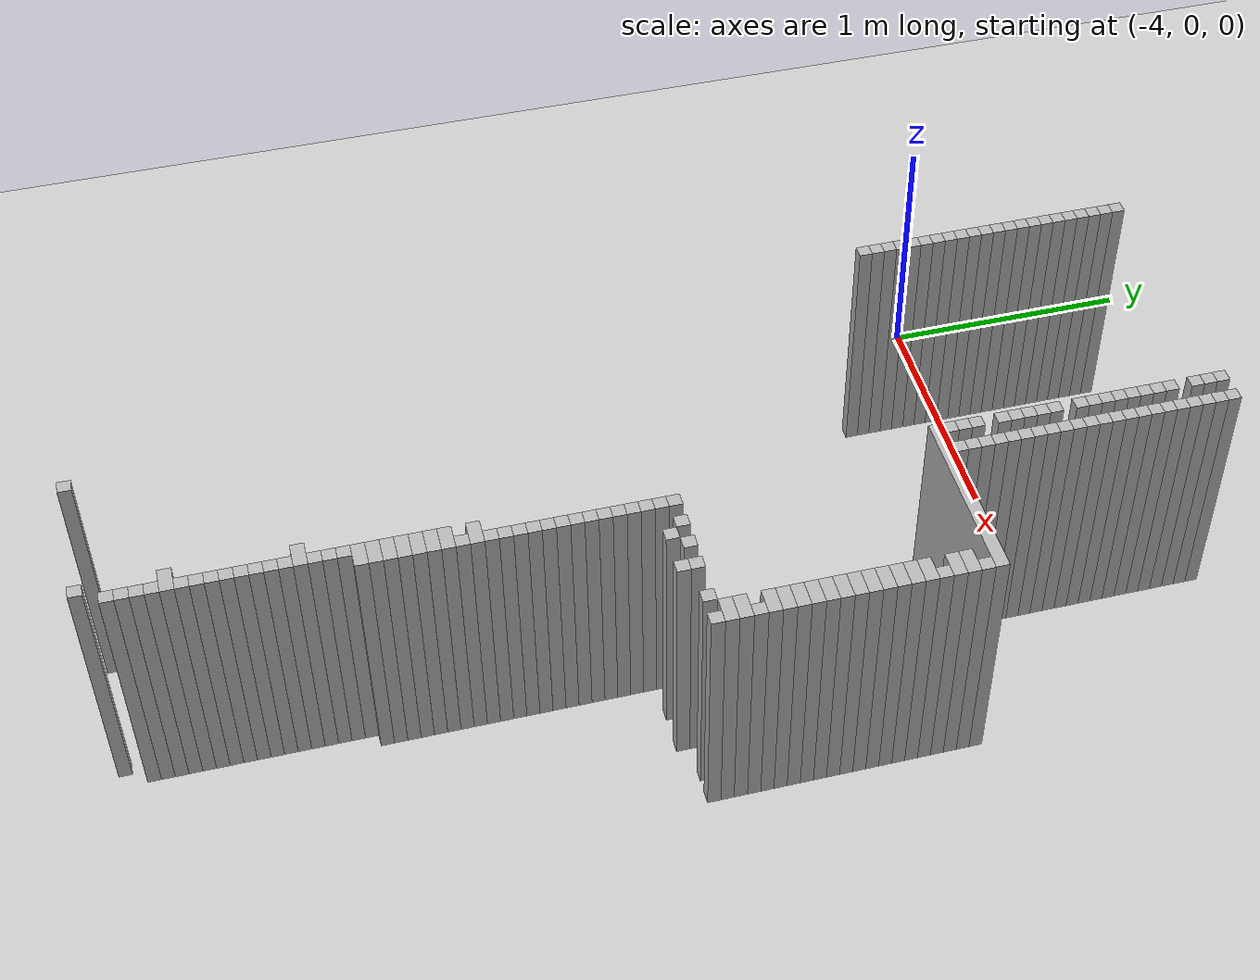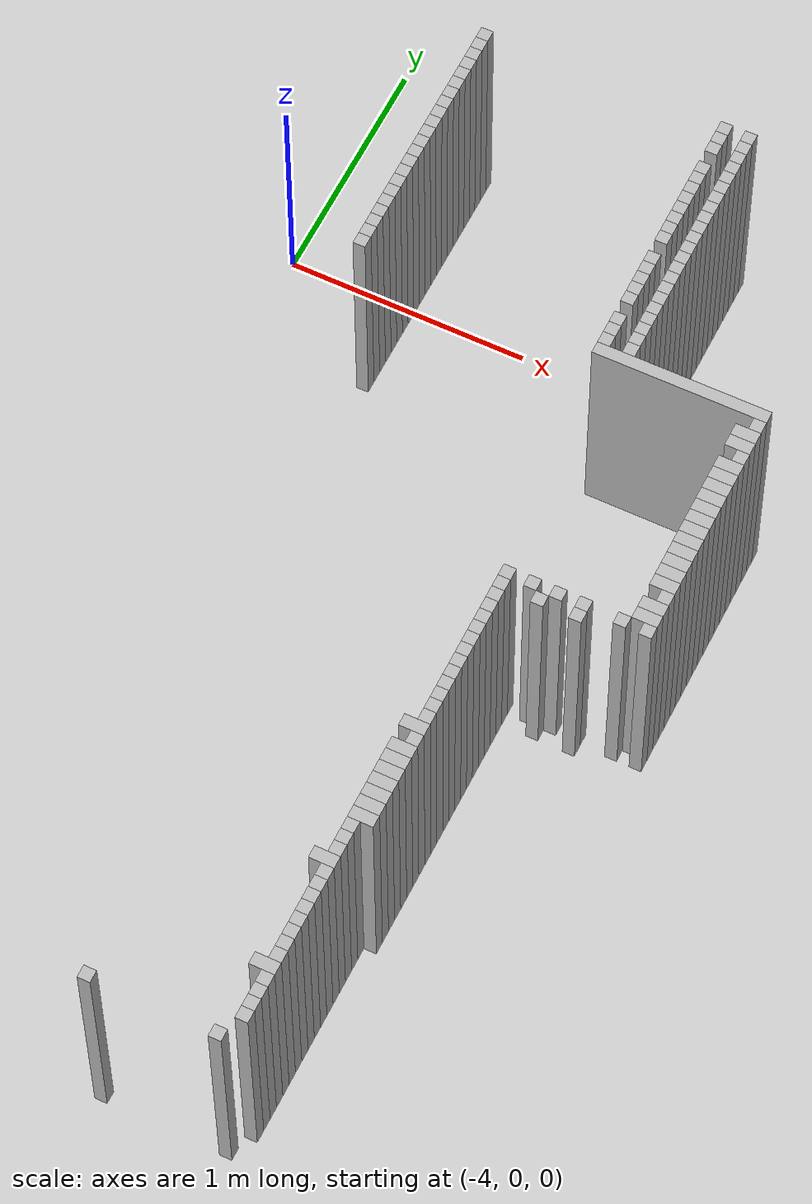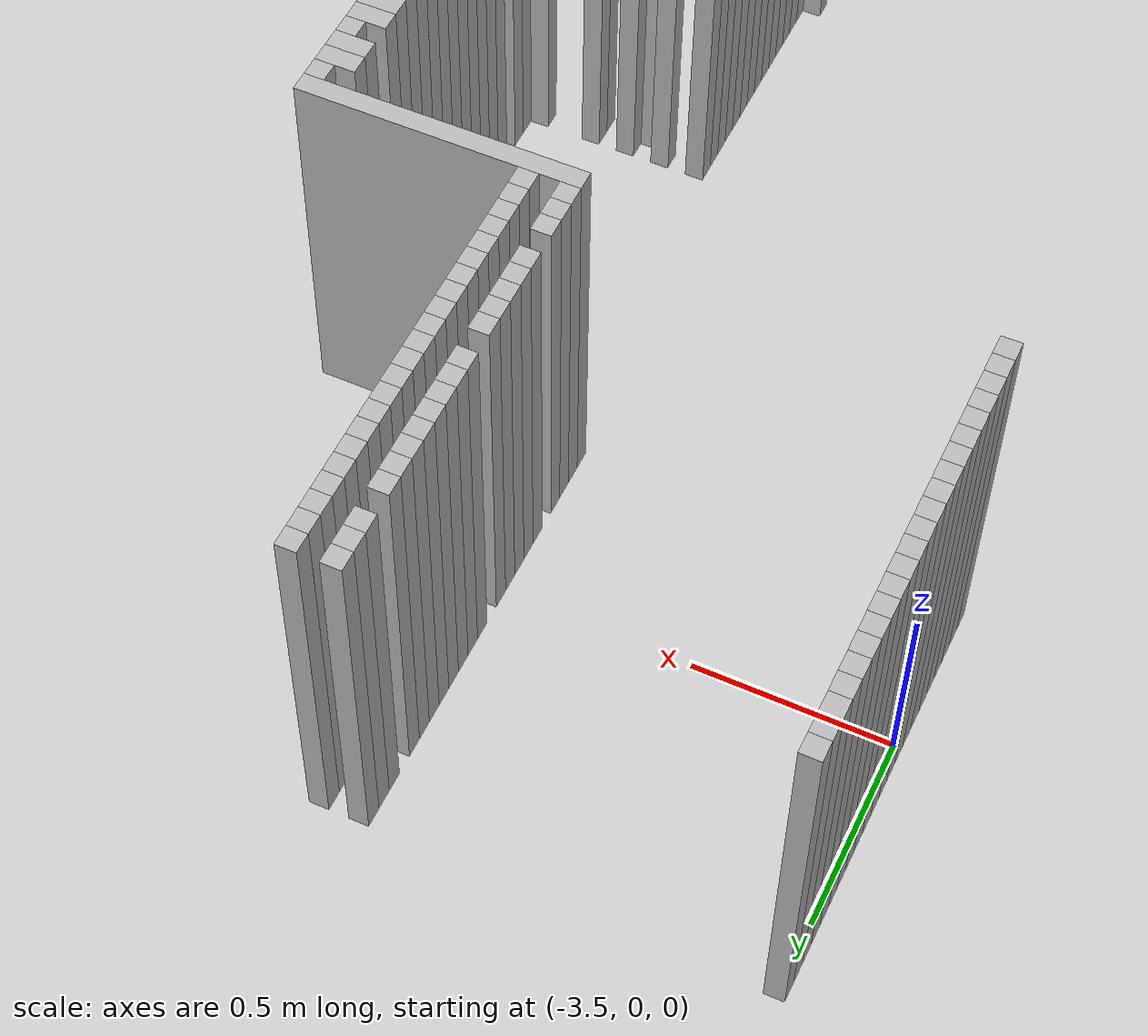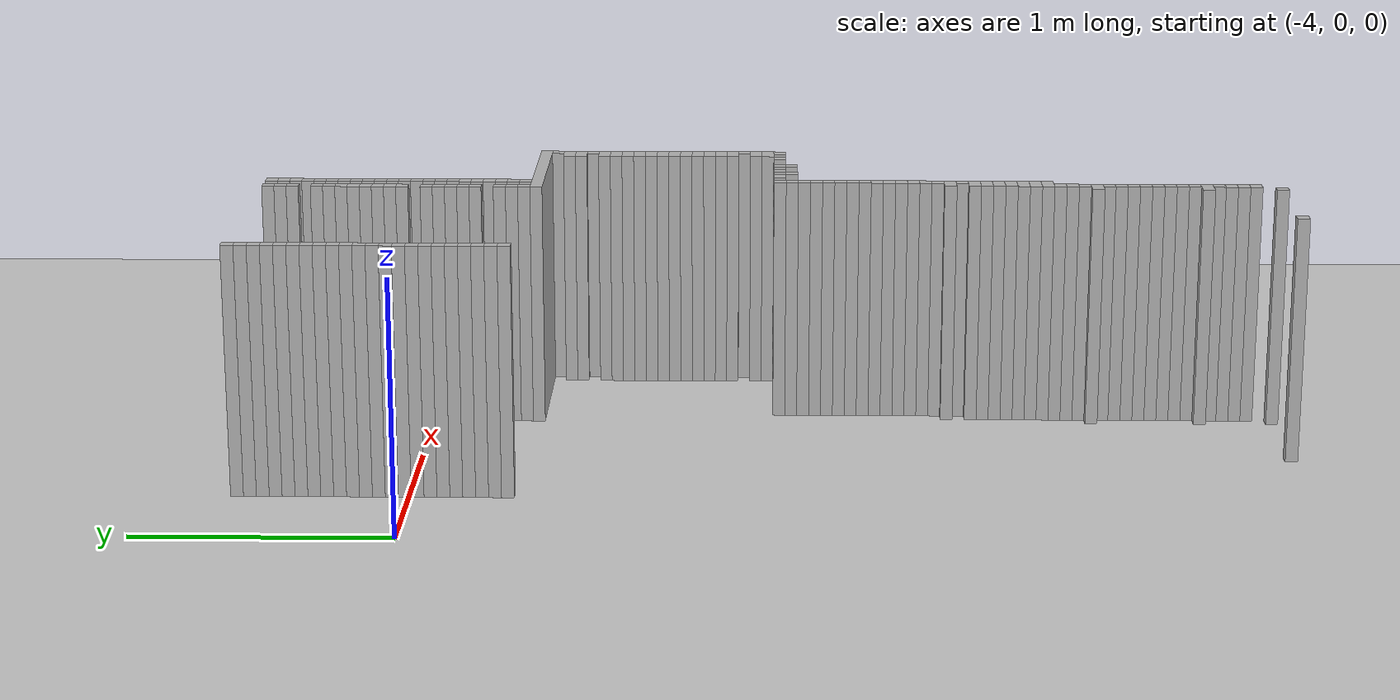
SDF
<sdf version="1.6">
 <world name="udh1_world">
  <include><uri>model://ground_plane</uri></include>
  <include><uri>model://sun</uri></include>
  <model name="wall_1363">
   <static>true</static>
   <pose>-3.494999999999999 0.6699999999999999 0.5 0 0 0</pose>
   <link name="link">
    <collision name="col"><geometry><box><size>0.05 0.05 1</size></box></geometry></collision>
    <visual name="vis"><geometry><box><size>0.05 0.05 1</size></box></geometry></visual>
   </link>
  </model>
  <model name="wall_1364">
   <static>true</static>
   <pose>-2.494999999999999 0.6699999999999999 0.5 0 0 0</pose>
   <link name="link">
    <collision name="col"><geometry><box><size>0.05 0.05 1</size></box></geometry></collision>
    <visual name="vis"><geometry><box><size>0.05 0.05 1</size></box></geometry></visual>
   </link>
  </model>
  <model name="wall_1365">
   <static>true</static>
   <pose>-2.3949999999999996 0.6699999999999999 0.5 0 0 0</pose>
   <link name="link">
    <collision name="col"><geometry><box><size>0.05 0.05 1</size></box></geometry></collision>
    <visual name="vis"><geometry><box><size>0.05 0.05 1</size></box></geometry></visual>
   </link>
  </model>
  <model name="wall_1371">
   <static>true</static>
   <pose>-3.494999999999999 0.6199999999999992 0.5 0 0 0</pose>
   <link name="link">
    <collision name="col"><geometry><box><size>0.05 0.05 1</size></box></geometry></collision>
    <visual name="vis"><geometry><box><size>0.05 0.05 1</size></box></geometry></visual>
   </link>
  </model>
  <model name="wall_1372">
   <static>true</static>
   <pose>-2.494999999999999 0.6199999999999992 0.5 0 0 0</pose>
   <link name="link">
    <collision name="col"><geometry><box><size>0.05 0.05 1</size></box></geometry></collision>
    <visual name="vis"><geometry><box><size>0.05 0.05 1</size></box></geometry></visual>
   </link>
  </model>
  <model name="wall_1373">
   <static>true</static>
   <pose>-2.3949999999999996 0.6199999999999992 0.5 0 0 0</pose>
   <link name="link">
    <collision name="col"><geometry><box><size>0.05 0.05 1</size></box></geometry></collision>
    <visual name="vis"><geometry><box><size>0.05 0.05 1</size></box></geometry></visual>
   </link>
  </model>
  <model name="wall_1378">
   <static>true</static>
   <pose>-3.494999999999999 0.5700000000000003 0.5 0 0 0</pose>
   <link name="link">
    <collision name="col"><geometry><box><size>0.05 0.05 1</size></box></geometry></collision>
    <visual name="vis"><geometry><box><size>0.05 0.05 1</size></box></geometry></visual>
   </link>
  </model>
  <model name="wall_1379">
   <static>true</static>
   <pose>-2.494999999999999 0.5700000000000003 0.5 0 0 0</pose>
   <link name="link">
    <collision name="col"><geometry><box><size>0.05 0.05 1</size></box></geometry></collision>
    <visual name="vis"><geometry><box><size>0.05 0.05 1</size></box></geometry></visual>
   </link>
  </model>
  <model name="wall_1380">
   <static>true</static>
   <pose>-2.3949999999999996 0.5700000000000003 0.5 0 0 0</pose>
   <link name="link">
    <collision name="col"><geometry><box><size>0.05 0.05 1</size></box></geometry></collision>
    <visual name="vis"><geometry><box><size>0.05 0.05 1</size></box></geometry></visual>
   </link>
  </model>
  <model name="wall_1385">
   <static>true</static>
   <pose>-3.494999999999999 0.5199999999999996 0.5 0 0 0</pose>
   <link name="link">
    <collision name="col"><geometry><box><size>0.05 0.05 1</size></box></geometry></collision>
    <visual name="vis"><geometry><box><size>0.05 0.05 1</size></box></geometry></visual>
   </link>
  </model>
  <model name="wall_1386">
   <static>true</static>
   <pose>-2.3949999999999996 0.5199999999999996 0.5 0 0 0</pose>
   <link name="link">
    <collision name="col"><geometry><box><size>0.05 0.05 1</size></box></geometry></collision>
    <visual name="vis"><geometry><box><size>0.05 0.05 1</size></box></geometry></visual>
   </link>
  </model>
  <model name="wall_1391">
   <static>true</static>
   <pose>-3.494999999999999 0.47000000000000064 0.5 0 0 0</pose>
   <link name="link">
    <collision name="col"><geometry><box><size>0.05 0.05 1</size></box></geometry></collision>
    <visual name="vis"><geometry><box><size>0.05 0.05 1</size></box></geometry></visual>
   </link>
  </model>
  <model name="wall_1392">
   <static>true</static>
   <pose>-2.494999999999999 0.47000000000000064 0.5 0 0 0</pose>
   <link name="link">
    <collision name="col"><geometry><box><size>0.05 0.05 1</size></box></geometry></collision>
    <visual name="vis"><geometry><box><size>0.05 0.05 1</size></box></geometry></visual>
   </link>
  </model>
  <model name="wall_1393">
   <static>true</static>
   <pose>-2.3949999999999996 0.47000000000000064 0.5 0 0 0</pose>
   <link name="link">
    <collision name="col"><geometry><box><size>0.05 0.05 1</size></box></geometry></collision>
    <visual name="vis"><geometry><box><size>0.05 0.05 1</size></box></geometry></visual>
   </link>
  </model>
  <model name="wall_1398">
   <static>true</static>
   <pose>-3.494999999999999 0.41999999999999993 0.5 0 0 0</pose>
   <link name="link">
    <collision name="col"><geometry><box><size>0.05 0.05 1</size></box></geometry></collision>
    <visual name="vis"><geometry><box><size>0.05 0.05 1</size></box></geometry></visual>
   </link>
  </model>
  <model name="wall_1399">
   <static>true</static>
   <pose>-2.494999999999999 0.41999999999999993 0.5 0 0 0</pose>
   <link name="link">
    <collision name="col"><geometry><box><size>0.05 0.05 1</size></box></geometry></collision>
    <visual name="vis"><geometry><box><size>0.05 0.05 1</size></box></geometry></visual>
   </link>
  </model>
  <model name="wall_1400">
   <static>true</static>
   <pose>-2.3949999999999996 0.41999999999999993 0.5 0 0 0</pose>
   <link name="link">
    <collision name="col"><geometry><box><size>0.05 0.05 1</size></box></geometry></collision>
    <visual name="vis"><geometry><box><size>0.05 0.05 1</size></box></geometry></visual>
   </link>
  </model>
  <model name="wall_1405">
   <static>true</static>
   <pose>-3.494999999999999 0.3699999999999992 0.5 0 0 0</pose>
   <link name="link">
    <collision name="col"><geometry><box><size>0.05 0.05 1</size></box></geometry></collision>
    <visual name="vis"><geometry><box><size>0.05 0.05 1</size></box></geometry></visual>
   </link>
  </model>
  <model name="wall_1406">
   <static>true</static>
   <pose>-2.494999999999999 0.3699999999999992 0.5 0 0 0</pose>
   <link name="link">
    <collision name="col"><geometry><box><size>0.05 0.05 1</size></box></geometry></collision>
    <visual name="vis"><geometry><box><size>0.05 0.05 1</size></box></geometry></visual>
   </link>
  </model>
  <model name="wall_1407">
   <static>true</static>
   <pose>-2.3949999999999996 0.3699999999999992 0.5 0 0 0</pose>
   <link name="link">
    <collision name="col"><geometry><box><size>0.05 0.05 1</size></box></geometry></collision>
    <visual name="vis"><geometry><box><size>0.05 0.05 1</size></box></geometry></visual>
   </link>
  </model>
  <model name="wall_1412">
   <static>true</static>
   <pose>-3.494999999999999 0.3200000000000003 0.5 0 0 0</pose>
   <link name="link">
    <collision name="col"><geometry><box><size>0.05 0.05 1</size></box></geometry></collision>
    <visual name="vis"><geometry><box><size>0.05 0.05 1</size></box></geometry></visual>
   </link>
  </model>
  <model name="wall_1413">
   <static>true</static>
   <pose>-2.494999999999999 0.3200000000000003 0.5 0 0 0</pose>
   <link name="link">
    <collision name="col"><geometry><box><size>0.05 0.05 1</size></box></geometry></collision>
    <visual name="vis"><geometry><box><size>0.05 0.05 1</size></box></geometry></visual>
   </link>
  </model>
  <model name="wall_1414">
   <static>true</static>
   <pose>-2.3949999999999996 0.3200000000000003 0.5 0 0 0</pose>
   <link name="link">
    <collision name="col"><geometry><box><size>0.05 0.05 1</size></box></geometry></collision>
    <visual name="vis"><geometry><box><size>0.05 0.05 1</size></box></geometry></visual>
   </link>
  </model>
  <model name="wall_1419">
   <static>true</static>
   <pose>-3.494999999999999 0.2699999999999996 0.5 0 0 0</pose>
   <link name="link">
    <collision name="col"><geometry><box><size>0.05 0.05 1</size></box></geometry></collision>
    <visual name="vis"><geometry><box><size>0.05 0.05 1</size></box></geometry></visual>
   </link>
  </model>
  <model name="wall_1420">
   <static>true</static>
   <pose>-2.494999999999999 0.2699999999999996 0.5 0 0 0</pose>
   <link name="link">
    <collision name="col"><geometry><box><size>0.05 0.05 1</size></box></geometry></collision>
    <visual name="vis"><geometry><box><size>0.05 0.05 1</size></box></geometry></visual>
   </link>
  </model>
  <model name="wall_1421">
   <static>true</static>
   <pose>-2.3949999999999996 0.2699999999999996 0.5 0 0 0</pose>
   <link name="link">
    <collision name="col"><geometry><box><size>0.05 0.05 1</size></box></geometry></collision>
    <visual name="vis"><geometry><box><size>0.05 0.05 1</size></box></geometry></visual>
   </link>
  </model>
  <model name="wall_1426">
   <static>true</static>
   <pose>-3.494999999999999 0.21999999999999886 0.5 0 0 0</pose>
   <link name="link">
    <collision name="col"><geometry><box><size>0.05 0.05 1</size></box></geometry></collision>
    <visual name="vis"><geometry><box><size>0.05 0.05 1</size></box></geometry></visual>
   </link>
  </model>
  <model name="wall_1427">
   <static>true</static>
   <pose>-2.494999999999999 0.21999999999999886 0.5 0 0 0</pose>
   <link name="link">
    <collision name="col"><geometry><box><size>0.05 0.05 1</size></box></geometry></collision>
    <visual name="vis"><geometry><box><size>0.05 0.05 1</size></box></geometry></visual>
   </link>
  </model>
  <model name="wall_1428">
   <static>true</static>
   <pose>-2.3949999999999996 0.21999999999999886 0.5 0 0 0</pose>
   <link name="link">
    <collision name="col"><geometry><box><size>0.05 0.05 1</size></box></geometry></collision>
    <visual name="vis"><geometry><box><size>0.05 0.05 1</size></box></geometry></visual>
   </link>
  </model>
  <model name="wall_1433">
   <static>true</static>
   <pose>-3.494999999999999 0.16999999999999993 0.5 0 0 0</pose>
   <link name="link">
    <collision name="col"><geometry><box><size>0.05 0.05 1</size></box></geometry></collision>
    <visual name="vis"><geometry><box><size>0.05 0.05 1</size></box></geometry></visual>
   </link>
  </model>
  <model name="wall_1434">
   <static>true</static>
   <pose>-2.494999999999999 0.16999999999999993 0.5 0 0 0</pose>
   <link name="link">
    <collision name="col"><geometry><box><size>0.05 0.05 1</size></box></geometry></collision>
    <visual name="vis"><geometry><box><size>0.05 0.05 1</size></box></geometry></visual>
   </link>
  </model>
  <model name="wall_1435">
   <static>true</static>
   <pose>-2.3949999999999996 0.16999999999999993 0.5 0 0 0</pose>
   <link name="link">
    <collision name="col"><geometry><box><size>0.05 0.05 1</size></box></geometry></collision>
    <visual name="vis"><geometry><box><size>0.05 0.05 1</size></box></geometry></visual>
   </link>
  </model>
  <model name="wall_1440">
   <static>true</static>
   <pose>-3.494999999999999 0.11999999999999922 0.5 0 0 0</pose>
   <link name="link">
    <collision name="col"><geometry><box><size>0.05 0.05 1</size></box></geometry></collision>
    <visual name="vis"><geometry><box><size>0.05 0.05 1</size></box></geometry></visual>
   </link>
  </model>
  <model name="wall_1441">
   <static>true</static>
   <pose>-2.494999999999999 0.11999999999999922 0.5 0 0 0</pose>
   <link name="link">
    <collision name="col"><geometry><box><size>0.05 0.05 1</size></box></geometry></collision>
    <visual name="vis"><geometry><box><size>0.05 0.05 1</size></box></geometry></visual>
   </link>
  </model>
  <model name="wall_1442">
   <static>true</static>
   <pose>-2.3949999999999996 0.11999999999999922 0.5 0 0 0</pose>
   <link name="link">
    <collision name="col"><geometry><box><size>0.05 0.05 1</size></box></geometry></collision>
    <visual name="vis"><geometry><box><size>0.05 0.05 1</size></box></geometry></visual>
   </link>
  </model>
  <model name="wall_1447">
   <static>true</static>
   <pose>-3.494999999999999 0.07000000000000028 0.5 0 0 0</pose>
   <link name="link">
    <collision name="col"><geometry><box><size>0.05 0.05 1</size></box></geometry></collision>
    <visual name="vis"><geometry><box><size>0.05 0.05 1</size></box></geometry></visual>
   </link>
  </model>
  <model name="wall_1448">
   <static>true</static>
   <pose>-2.3949999999999996 0.07000000000000028 0.5 0 0 0</pose>
   <link name="link">
    <collision name="col"><geometry><box><size>0.05 0.05 1</size></box></geometry></collision>
    <visual name="vis"><geometry><box><size>0.05 0.05 1</size></box></geometry></visual>
   </link>
  </model>
  <model name="wall_1456">
   <static>true</static>
   <pose>-3.494999999999999 0.019999999999999574 0.5 0 0 0</pose>
   <link name="link">
    <collision name="col"><geometry><box><size>0.05 0.05 1</size></box></geometry></collision>
    <visual name="vis"><geometry><box><size>0.05 0.05 1</size></box></geometry></visual>
   </link>
  </model>
  <model name="wall_1457">
   <static>true</static>
   <pose>-2.494999999999999 0.019999999999999574 0.5 0 0 0</pose>
   <link name="link">
    <collision name="col"><geometry><box><size>0.05 0.05 1</size></box></geometry></collision>
    <visual name="vis"><geometry><box><size>0.05 0.05 1</size></box></geometry></visual>
   </link>
  </model>
  <model name="wall_1458">
   <static>true</static>
   <pose>-2.3949999999999996 0.019999999999999574 0.5 0 0 0</pose>
   <link name="link">
    <collision name="col"><geometry><box><size>0.05 0.05 1</size></box></geometry></collision>
    <visual name="vis"><geometry><box><size>0.05 0.05 1</size></box></geometry></visual>
   </link>
  </model>
  <model name="wall_1471">
   <static>true</static>
   <pose>-3.494999999999999 -0.030000000000001137 0.5 0 0 0</pose>
   <link name="link">
    <collision name="col"><geometry><box><size>0.05 0.05 1</size></box></geometry></collision>
    <visual name="vis"><geometry><box><size>0.05 0.05 1</size></box></geometry></visual>
   </link>
  </model>
  <model name="wall_1472">
   <static>true</static>
   <pose>-2.494999999999999 -0.030000000000001137 0.5 0 0 0</pose>
   <link name="link">
    <collision name="col"><geometry><box><size>0.05 0.05 1</size></box></geometry></collision>
    <visual name="vis"><geometry><box><size>0.05 0.05 1</size></box></geometry></visual>
   </link>
  </model>
  <model name="wall_1473">
   <static>true</static>
   <pose>-2.3949999999999996 -0.030000000000001137 0.5 0 0 0</pose>
   <link name="link">
    <collision name="col"><geometry><box><size>0.05 0.05 1</size></box></geometry></collision>
    <visual name="vis"><geometry><box><size>0.05 0.05 1</size></box></geometry></visual>
   </link>
  </model>
  <model name="wall_1478">
   <static>true</static>
   <pose>-3.494999999999999 -0.08000000000000007 0.5 0 0 0</pose>
   <link name="link">
    <collision name="col"><geometry><box><size>0.05 0.05 1</size></box></geometry></collision>
    <visual name="vis"><geometry><box><size>0.05 0.05 1</size></box></geometry></visual>
   </link>
  </model>
  <model name="wall_1479">
   <static>true</static>
   <pose>-2.494999999999999 -0.08000000000000007 0.5 0 0 0</pose>
   <link name="link">
    <collision name="col"><geometry><box><size>0.05 0.05 1</size></box></geometry></collision>
    <visual name="vis"><geometry><box><size>0.05 0.05 1</size></box></geometry></visual>
   </link>
  </model>
  <model name="wall_1480">
   <static>true</static>
   <pose>-2.3949999999999996 -0.08000000000000007 0.5 0 0 0</pose>
   <link name="link">
    <collision name="col"><geometry><box><size>0.05 0.05 1</size></box></geometry></collision>
    <visual name="vis"><geometry><box><size>0.05 0.05 1</size></box></geometry></visual>
   </link>
  </model>
  <model name="wall_1485">
   <static>true</static>
   <pose>-3.494999999999999 -0.13000000000000078 0.5 0 0 0</pose>
   <link name="link">
    <collision name="col"><geometry><box><size>0.05 0.05 1</size></box></geometry></collision>
    <visual name="vis"><geometry><box><size>0.05 0.05 1</size></box></geometry></visual>
   </link>
  </model>
  <model name="wall_1486">
   <static>true</static>
   <pose>-2.494999999999999 -0.13000000000000078 0.5 0 0 0</pose>
   <link name="link">
    <collision name="col"><geometry><box><size>0.05 0.05 1</size></box></geometry></collision>
    <visual name="vis"><geometry><box><size>0.05 0.05 1</size></box></geometry></visual>
   </link>
  </model>
  <model name="wall_1487">
   <static>true</static>
   <pose>-2.3949999999999996 -0.13000000000000078 0.5 0 0 0</pose>
   <link name="link">
    <collision name="col"><geometry><box><size>0.05 0.05 1</size></box></geometry></collision>
    <visual name="vis"><geometry><box><size>0.05 0.05 1</size></box></geometry></visual>
   </link>
  </model>
  <model name="wall_1491">
   <static>true</static>
   <pose>-3.494999999999999 -0.17999999999999972 0.5 0 0 0</pose>
   <link name="link">
    <collision name="col"><geometry><box><size>0.05 0.05 1</size></box></geometry></collision>
    <visual name="vis"><geometry><box><size>0.05 0.05 1</size></box></geometry></visual>
   </link>
  </model>
  <model name="wall_1492">
   <static>true</static>
   <pose>-2.494999999999999 -0.17999999999999972 0.5 0 0 0</pose>
   <link name="link">
    <collision name="col"><geometry><box><size>0.05 0.05 1</size></box></geometry></collision>
    <visual name="vis"><geometry><box><size>0.05 0.05 1</size></box></geometry></visual>
   </link>
  </model>
  <model name="wall_1493">
   <static>true</static>
   <pose>-2.3949999999999996 -0.17999999999999972 0.5 0 0 0</pose>
   <link name="link">
    <collision name="col"><geometry><box><size>0.05 0.05 1</size></box></geometry></collision>
    <visual name="vis"><geometry><box><size>0.05 0.05 1</size></box></geometry></visual>
   </link>
  </model>
  <model name="wall_1497">
   <static>true</static>
   <pose>-3.494999999999999 -0.23000000000000043 0.5 0 0 0</pose>
   <link name="link">
    <collision name="col"><geometry><box><size>0.05 0.05 1</size></box></geometry></collision>
    <visual name="vis"><geometry><box><size>0.05 0.05 1</size></box></geometry></visual>
   </link>
  </model>
  <model name="wall_1498">
   <static>true</static>
   <pose>-2.3949999999999996 -0.23000000000000043 0.5 0 0 0</pose>
   <link name="link">
    <collision name="col"><geometry><box><size>0.05 0.05 1</size></box></geometry></collision>
    <visual name="vis"><geometry><box><size>0.05 0.05 1</size></box></geometry></visual>
   </link>
  </model>
  <model name="wall_1502">
   <static>true</static>
   <pose>-3.494999999999999 -0.28000000000000114 0.5 0 0 0</pose>
   <link name="link">
    <collision name="col"><geometry><box><size>0.05 0.05 1</size></box></geometry></collision>
    <visual name="vis"><geometry><box><size>0.05 0.05 1</size></box></geometry></visual>
   </link>
  </model>
  <model name="wall_1503">
   <static>true</static>
   <pose>-2.494999999999999 -0.28000000000000114 0.5 0 0 0</pose>
   <link name="link">
    <collision name="col"><geometry><box><size>0.05 0.05 1</size></box></geometry></collision>
    <visual name="vis"><geometry><box><size>0.05 0.05 1</size></box></geometry></visual>
   </link>
  </model>
  <model name="wall_1504">
   <static>true</static>
   <pose>-2.3949999999999996 -0.28000000000000114 0.5 0 0 0</pose>
   <link name="link">
    <collision name="col"><geometry><box><size>0.05 0.05 1</size></box></geometry></collision>
    <visual name="vis"><geometry><box><size>0.05 0.05 1</size></box></geometry></visual>
   </link>
  </model>
  <model name="wall_1508">
   <static>true</static>
   <pose>-3.494999999999999 -0.33000000000000007 0.5 0 0 0</pose>
   <link name="link">
    <collision name="col"><geometry><box><size>0.05 0.05 1</size></box></geometry></collision>
    <visual name="vis"><geometry><box><size>0.05 0.05 1</size></box></geometry></visual>
   </link>
  </model>
  <model name="wall_1509">
   <static>true</static>
   <pose>-2.494999999999999 -0.33000000000000007 0.5 0 0 0</pose>
   <link name="link">
    <collision name="col"><geometry><box><size>0.05 0.05 1</size></box></geometry></collision>
    <visual name="vis"><geometry><box><size>0.05 0.05 1</size></box></geometry></visual>
   </link>
  </model>
  <model name="wall_1510">
   <static>true</static>
   <pose>-2.3949999999999996 -0.33000000000000007 0.5 0 0 0</pose>
   <link name="link">
    <collision name="col"><geometry><box><size>0.05 0.05 1</size></box></geometry></collision>
    <visual name="vis"><geometry><box><size>0.05 0.05 1</size></box></geometry></visual>
   </link>
  </model>
  <model name="wall_1514">
   <static>true</static>
   <pose>-3.494999999999999 -0.3800000000000008 0.5 0 0 0</pose>
   <link name="link">
    <collision name="col"><geometry><box><size>0.05 0.05 1</size></box></geometry></collision>
    <visual name="vis"><geometry><box><size>0.05 0.05 1</size></box></geometry></visual>
   </link>
  </model>
  <model name="wall_1515">
   <static>true</static>
   <pose>-2.494999999999999 -0.3800000000000008 0.5 0 0 0</pose>
   <link name="link">
    <collision name="col"><geometry><box><size>0.05 0.05 1</size></box></geometry></collision>
    <visual name="vis"><geometry><box><size>0.05 0.05 1</size></box></geometry></visual>
   </link>
  </model>
  <model name="wall_1516">
   <static>true</static>
   <pose>-2.3949999999999996 -0.3800000000000008 0.5 0 0 0</pose>
   <link name="link">
    <collision name="col"><geometry><box><size>0.05 0.05 1</size></box></geometry></collision>
    <visual name="vis"><geometry><box><size>0.05 0.05 1</size></box></geometry></visual>
   </link>
  </model>
  <model name="wall_1522">
   <static>true</static>
   <pose>-2.169999999999999 -0.4299999999999997 0.5 0 0 0</pose>
   <link name="link">
    <collision name="col"><geometry><box><size>0.7000000000000001 0.05 1</size></box></geometry></collision>
    <visual name="vis"><geometry><box><size>0.7000000000000001 0.05 1</size></box></geometry></visual>
   </link>
  </model>
  <model name="wall_1528">
   <static>true</static>
   <pose>-1.8449999999999989 -0.4800000000000004 0.5 0 0 0</pose>
   <link name="link">
    <collision name="col"><geometry><box><size>0.05 0.05 1</size></box></geometry></collision>
    <visual name="vis"><geometry><box><size>0.05 0.05 1</size></box></geometry></visual>
   </link>
  </model>
  <model name="wall_1534">
   <static>true</static>
   <pose>-1.8699999999999992 -0.5300000000000011 0.5 0 0 0</pose>
   <link name="link">
    <collision name="col"><geometry><box><size>0.1 0.05 1</size></box></geometry></collision>
    <visual name="vis"><geometry><box><size>0.1 0.05 1</size></box></geometry></visual>
   </link>
  </model>
  <model name="wall_1540">
   <static>true</static>
   <pose>-1.8699999999999992 -0.5800000000000001 0.5 0 0 0</pose>
   <link name="link">
    <collision name="col"><geometry><box><size>0.1 0.05 1</size></box></geometry></collision>
    <visual name="vis"><geometry><box><size>0.1 0.05 1</size></box></geometry></visual>
   </link>
  </model>
  <model name="wall_1546">
   <static>true</static>
   <pose>-1.8449999999999989 -0.6300000000000008 0.5 0 0 0</pose>
   <link name="link">
    <collision name="col"><geometry><box><size>0.05 0.05 1</size></box></geometry></collision>
    <visual name="vis"><geometry><box><size>0.05 0.05 1</size></box></geometry></visual>
   </link>
  </model>
  <model name="wall_1552">
   <static>true</static>
   <pose>-1.8699999999999992 -0.6799999999999997 0.5 0 0 0</pose>
   <link name="link">
    <collision name="col"><geometry><box><size>0.1 0.05 1</size></box></geometry></collision>
    <visual name="vis"><geometry><box><size>0.1 0.05 1</size></box></geometry></visual>
   </link>
  </model>
  <model name="wall_1558">
   <static>true</static>
   <pose>-1.8699999999999992 -0.7300000000000004 0.5 0 0 0</pose>
   <link name="link">
    <collision name="col"><geometry><box><size>0.1 0.05 1</size></box></geometry></collision>
    <visual name="vis"><geometry><box><size>0.1 0.05 1</size></box></geometry></visual>
   </link>
  </model>
  <model name="wall_1564">
   <static>true</static>
   <pose>-1.8699999999999992 -0.7800000000000011 0.5 0 0 0</pose>
   <link name="link">
    <collision name="col"><geometry><box><size>0.1 0.05 1</size></box></geometry></collision>
    <visual name="vis"><geometry><box><size>0.1 0.05 1</size></box></geometry></visual>
   </link>
  </model>
  <model name="wall_1570">
   <static>true</static>
   <pose>-1.8699999999999992 -0.8300000000000001 0.5 0 0 0</pose>
   <link name="link">
    <collision name="col"><geometry><box><size>0.1 0.05 1</size></box></geometry></collision>
    <visual name="vis"><geometry><box><size>0.1 0.05 1</size></box></geometry></visual>
   </link>
  </model>
  <model name="wall_1576">
   <static>true</static>
   <pose>-1.8699999999999992 -0.8800000000000008 0.5 0 0 0</pose>
   <link name="link">
    <collision name="col"><geometry><box><size>0.1 0.05 1</size></box></geometry></collision>
    <visual name="vis"><geometry><box><size>0.1 0.05 1</size></box></geometry></visual>
   </link>
  </model>
  <model name="wall_1581">
   <static>true</static>
   <pose>-1.8699999999999992 -0.9299999999999997 0.5 0 0 0</pose>
   <link name="link">
    <collision name="col"><geometry><box><size>0.1 0.05 1</size></box></geometry></collision>
    <visual name="vis"><geometry><box><size>0.1 0.05 1</size></box></geometry></visual>
   </link>
  </model>
  <model name="wall_1585">
   <static>true</static>
   <pose>-1.8699999999999992 -0.9800000000000004 0.5 0 0 0</pose>
   <link name="link">
    <collision name="col"><geometry><box><size>0.1 0.05 1</size></box></geometry></collision>
    <visual name="vis"><geometry><box><size>0.1 0.05 1</size></box></geometry></visual>
   </link>
  </model>
  <model name="wall_1589">
   <static>true</static>
   <pose>-1.8699999999999992 -1.0300000000000011 0.5 0 0 0</pose>
   <link name="link">
    <collision name="col"><geometry><box><size>0.1 0.05 1</size></box></geometry></collision>
    <visual name="vis"><geometry><box><size>0.1 0.05 1</size></box></geometry></visual>
   </link>
  </model>
  <model name="wall_1593">
   <static>true</static>
   <pose>-1.8699999999999992 -1.08 0.5 0 0 0</pose>
   <link name="link">
    <collision name="col"><geometry><box><size>0.1 0.05 1</size></box></geometry></collision>
    <visual name="vis"><geometry><box><size>0.1 0.05 1</size></box></geometry></visual>
   </link>
  </model>
  <model name="wall_1597">
   <static>true</static>
   <pose>-1.8699999999999992 -1.1300000000000008 0.5 0 0 0</pose>
   <link name="link">
    <collision name="col"><geometry><box><size>0.1 0.05 1</size></box></geometry></collision>
    <visual name="vis"><geometry><box><size>0.1 0.05 1</size></box></geometry></visual>
   </link>
  </model>
  <model name="wall_1601">
   <static>true</static>
   <pose>-1.8699999999999992 -1.1800000000000006 0.5 0 0 0</pose>
   <link name="link">
    <collision name="col"><geometry><box><size>0.1 0.05 1</size></box></geometry></collision>
    <visual name="vis"><geometry><box><size>0.1 0.05 1</size></box></geometry></visual>
   </link>
  </model>
  <model name="wall_1605">
   <static>true</static>
   <pose>-1.8699999999999992 -1.2300000000000004 0.5 0 0 0</pose>
   <link name="link">
    <collision name="col"><geometry><box><size>0.1 0.05 1</size></box></geometry></collision>
    <visual name="vis"><geometry><box><size>0.1 0.05 1</size></box></geometry></visual>
   </link>
  </model>
  <model name="wall_1609">
   <static>true</static>
   <pose>-1.8449999999999989 -1.2800000000000002 0.5 0 0 0</pose>
   <link name="link">
    <collision name="col"><geometry><box><size>0.05 0.05 1</size></box></geometry></collision>
    <visual name="vis"><geometry><box><size>0.05 0.05 1</size></box></geometry></visual>
   </link>
  </model>
  <model name="wall_1613">
   <static>true</static>
   <pose>-1.8699999999999992 -1.33 0.5 0 0 0</pose>
   <link name="link">
    <collision name="col"><geometry><box><size>0.1 0.05 1</size></box></geometry></collision>
    <visual name="vis"><geometry><box><size>0.1 0.05 1</size></box></geometry></visual>
   </link>
  </model>
  <model name="wall_1617">
   <static>true</static>
   <pose>-1.8699999999999992 -1.3800000000000008 0.5 0 0 0</pose>
   <link name="link">
    <collision name="col"><geometry><box><size>0.1 0.05 1</size></box></geometry></collision>
    <visual name="vis"><geometry><box><size>0.1 0.05 1</size></box></geometry></visual>
   </link>
  </model>
  <model name="wall_1621">
   <static>true</static>
   <pose>-2.3949999999999996 -1.4300000000000006 0.5 0 0 0</pose>
   <link name="link">
    <collision name="col"><geometry><box><size>0.05 0.05 1</size></box></geometry></collision>
    <visual name="vis"><geometry><box><size>0.05 0.05 1</size></box></geometry></visual>
   </link>
  </model>
  <model name="wall_1622">
   <static>true</static>
   <pose>-2.294999999999999 -1.4300000000000006 0.5 0 0 0</pose>
   <link name="link">
    <collision name="col"><geometry><box><size>0.05 0.05 1</size></box></geometry></collision>
    <visual name="vis"><geometry><box><size>0.05 0.05 1</size></box></geometry></visual>
   </link>
  </model>
  <model name="wall_1623">
   <static>true</static>
   <pose>-2.1949999999999994 -1.4300000000000006 0.5 0 0 0</pose>
   <link name="link">
    <collision name="col"><geometry><box><size>0.05 0.05 1</size></box></geometry></collision>
    <visual name="vis"><geometry><box><size>0.05 0.05 1</size></box></geometry></visual>
   </link>
  </model>
  <model name="wall_1624">
   <static>true</static>
   <pose>-2.094999999999999 -1.4300000000000006 0.5 0 0 0</pose>
   <link name="link">
    <collision name="col"><geometry><box><size>0.05 0.05 1</size></box></geometry></collision>
    <visual name="vis"><geometry><box><size>0.05 0.05 1</size></box></geometry></visual>
   </link>
  </model>
  <model name="wall_1625">
   <static>true</static>
   <pose>-1.9449999999999994 -1.4300000000000006 0.5 0 0 0</pose>
   <link name="link">
    <collision name="col"><geometry><box><size>0.05 0.05 1</size></box></geometry></collision>
    <visual name="vis"><geometry><box><size>0.05 0.05 1</size></box></geometry></visual>
   </link>
  </model>
  <model name="wall_1626">
   <static>true</static>
   <pose>-1.8449999999999989 -1.4300000000000006 0.5 0 0 0</pose>
   <link name="link">
    <collision name="col"><geometry><box><size>0.05 0.05 1</size></box></geometry></collision>
    <visual name="vis"><geometry><box><size>0.05 0.05 1</size></box></geometry></visual>
   </link>
  </model>
  <model name="wall_1630">
   <static>true</static>
   <pose>-2.3949999999999996 -1.4800000000000004 0.5 0 0 0</pose>
   <link name="link">
    <collision name="col"><geometry><box><size>0.05 0.05 1</size></box></geometry></collision>
    <visual name="vis"><geometry><box><size>0.05 0.05 1</size></box></geometry></visual>
   </link>
  </model>
  <model name="wall_1631">
   <static>true</static>
   <pose>-2.244999999999999 -1.4800000000000004 0.5 0 0 0</pose>
   <link name="link">
    <collision name="col"><geometry><box><size>0.05 0.05 1</size></box></geometry></collision>
    <visual name="vis"><geometry><box><size>0.05 0.05 1</size></box></geometry></visual>
   </link>
  </model>
  <model name="wall_1632">
   <static>true</static>
   <pose>-2.094999999999999 -1.4800000000000004 0.5 0 0 0</pose>
   <link name="link">
    <collision name="col"><geometry><box><size>0.05 0.05 1</size></box></geometry></collision>
    <visual name="vis"><geometry><box><size>0.05 0.05 1</size></box></geometry></visual>
   </link>
  </model>
  <model name="wall_1636">
   <static>true</static>
   <pose>-2.3949999999999996 -1.5300000000000002 0.5 0 0 0</pose>
   <link name="link">
    <collision name="col"><geometry><box><size>0.05 0.05 1</size></box></geometry></collision>
    <visual name="vis"><geometry><box><size>0.05 0.05 1</size></box></geometry></visual>
   </link>
  </model>
  <model name="wall_1640">
   <static>true</static>
   <pose>-2.3949999999999996 -1.58 0.5 0 0 0</pose>
   <link name="link">
    <collision name="col"><geometry><box><size>0.05 0.05 1</size></box></geometry></collision>
    <visual name="vis"><geometry><box><size>0.05 0.05 1</size></box></geometry></visual>
   </link>
  </model>
  <model name="wall_1644">
   <static>true</static>
   <pose>-2.3949999999999996 -1.6300000000000008 0.5 0 0 0</pose>
   <link name="link">
    <collision name="col"><geometry><box><size>0.05 0.05 1</size></box></geometry></collision>
    <visual name="vis"><geometry><box><size>0.05 0.05 1</size></box></geometry></visual>
   </link>
  </model>
  <model name="wall_1648">
   <static>true</static>
   <pose>-2.3949999999999996 -1.6800000000000006 0.5 0 0 0</pose>
   <link name="link">
    <collision name="col"><geometry><box><size>0.05 0.05 1</size></box></geometry></collision>
    <visual name="vis"><geometry><box><size>0.05 0.05 1</size></box></geometry></visual>
   </link>
  </model>
  <model name="wall_1652">
   <static>true</static>
   <pose>-2.3949999999999996 -1.7300000000000004 0.5 0 0 0</pose>
   <link name="link">
    <collision name="col"><geometry><box><size>0.05 0.05 1</size></box></geometry></collision>
    <visual name="vis"><geometry><box><size>0.05 0.05 1</size></box></geometry></visual>
   </link>
  </model>
  <model name="wall_1656">
   <static>true</static>
   <pose>-2.3949999999999996 -1.7800000000000002 0.5 0 0 0</pose>
   <link name="link">
    <collision name="col"><geometry><box><size>0.05 0.05 1</size></box></geometry></collision>
    <visual name="vis"><geometry><box><size>0.05 0.05 1</size></box></geometry></visual>
   </link>
  </model>
  <model name="wall_1660">
   <static>true</static>
   <pose>-2.3949999999999996 -1.83 0.5 0 0 0</pose>
   <link name="link">
    <collision name="col"><geometry><box><size>0.05 0.05 1</size></box></geometry></collision>
    <visual name="vis"><geometry><box><size>0.05 0.05 1</size></box></geometry></visual>
   </link>
  </model>
  <model name="wall_1664">
   <static>true</static>
   <pose>-2.3949999999999996 -1.8800000000000008 0.5 0 0 0</pose>
   <link name="link">
    <collision name="col"><geometry><box><size>0.05 0.05 1</size></box></geometry></collision>
    <visual name="vis"><geometry><box><size>0.05 0.05 1</size></box></geometry></visual>
   </link>
  </model>
  <model name="wall_1668">
   <static>true</static>
   <pose>-2.3949999999999996 -1.9300000000000006 0.5 0 0 0</pose>
   <link name="link">
    <collision name="col"><geometry><box><size>0.05 0.05 1</size></box></geometry></collision>
    <visual name="vis"><geometry><box><size>0.05 0.05 1</size></box></geometry></visual>
   </link>
  </model>
  <model name="wall_1672">
   <static>true</static>
   <pose>-2.3949999999999996 -1.9800000000000004 0.5 0 0 0</pose>
   <link name="link">
    <collision name="col"><geometry><box><size>0.05 0.05 1</size></box></geometry></collision>
    <visual name="vis"><geometry><box><size>0.05 0.05 1</size></box></geometry></visual>
   </link>
  </model>
  <model name="wall_1676">
   <static>true</static>
   <pose>-2.3949999999999996 -2.0300000000000002 0.5 0 0 0</pose>
   <link name="link">
    <collision name="col"><geometry><box><size>0.05 0.05 1</size></box></geometry></collision>
    <visual name="vis"><geometry><box><size>0.05 0.05 1</size></box></geometry></visual>
   </link>
  </model>
  <model name="wall_1680">
   <static>true</static>
   <pose>-2.3949999999999996 -2.08 0.5 0 0 0</pose>
   <link name="link">
    <collision name="col"><geometry><box><size>0.05 0.05 1</size></box></geometry></collision>
    <visual name="vis"><geometry><box><size>0.05 0.05 1</size></box></geometry></visual>
   </link>
  </model>
  <model name="wall_1684">
   <static>true</static>
   <pose>-2.419999999999999 -2.130000000000001 0.5 0 0 0</pose>
   <link name="link">
    <collision name="col"><geometry><box><size>0.1 0.05 1</size></box></geometry></collision>
    <visual name="vis"><geometry><box><size>0.1 0.05 1</size></box></geometry></visual>
   </link>
  </model>
  <model name="wall_1688">
   <static>true</static>
   <pose>-2.3949999999999996 -2.1800000000000006 0.5 0 0 0</pose>
   <link name="link">
    <collision name="col"><geometry><box><size>0.05 0.05 1</size></box></geometry></collision>
    <visual name="vis"><geometry><box><size>0.05 0.05 1</size></box></geometry></visual>
   </link>
  </model>
  <model name="wall_1692">
   <static>true</static>
   <pose>-2.419999999999999 -2.2300000000000004 0.5 0 0 0</pose>
   <link name="link">
    <collision name="col"><geometry><box><size>0.1 0.05 1</size></box></geometry></collision>
    <visual name="vis"><geometry><box><size>0.1 0.05 1</size></box></geometry></visual>
   </link>
  </model>
  <model name="wall_1696">
   <static>true</static>
   <pose>-2.419999999999999 -2.2800000000000002 0.5 0 0 0</pose>
   <link name="link">
    <collision name="col"><geometry><box><size>0.1 0.05 1</size></box></geometry></collision>
    <visual name="vis"><geometry><box><size>0.1 0.05 1</size></box></geometry></visual>
   </link>
  </model>
  <model name="wall_1700">
   <static>true</static>
   <pose>-2.419999999999999 -2.33 0.5 0 0 0</pose>
   <link name="link">
    <collision name="col"><geometry><box><size>0.1 0.05 1</size></box></geometry></collision>
    <visual name="vis"><geometry><box><size>0.1 0.05 1</size></box></geometry></visual>
   </link>
  </model>
  <model name="wall_1704">
   <static>true</static>
   <pose>-2.419999999999999 -2.380000000000001 0.5 0 0 0</pose>
   <link name="link">
    <collision name="col"><geometry><box><size>0.1 0.05 1</size></box></geometry></collision>
    <visual name="vis"><geometry><box><size>0.1 0.05 1</size></box></geometry></visual>
   </link>
  </model>
  <model name="wall_1708">
   <static>true</static>
   <pose>-2.419999999999999 -2.4300000000000006 0.5 0 0 0</pose>
   <link name="link">
    <collision name="col"><geometry><box><size>0.1 0.05 1</size></box></geometry></collision>
    <visual name="vis"><geometry><box><size>0.1 0.05 1</size></box></geometry></visual>
   </link>
  </model>
  <model name="wall_1712">
   <static>true</static>
   <pose>-2.419999999999999 -2.4800000000000004 0.5 0 0 0</pose>
   <link name="link">
    <collision name="col"><geometry><box><size>0.1 0.05 1</size></box></geometry></collision>
    <visual name="vis"><geometry><box><size>0.1 0.05 1</size></box></geometry></visual>
   </link>
  </model>
  <model name="wall_1716">
   <static>true</static>
   <pose>-2.419999999999999 -2.5300000000000002 0.5 0 0 0</pose>
   <link name="link">
    <collision name="col"><geometry><box><size>0.1 0.05 1</size></box></geometry></collision>
    <visual name="vis"><geometry><box><size>0.1 0.05 1</size></box></geometry></visual>
   </link>
  </model>
  <model name="wall_1723">
   <static>true</static>
   <pose>-2.4449999999999994 -2.58 0.5 0 0 0</pose>
   <link name="link">
    <collision name="col"><geometry><box><size>0.05 0.05 1</size></box></geometry></collision>
    <visual name="vis"><geometry><box><size>0.05 0.05 1</size></box></geometry></visual>
   </link>
  </model>
  <model name="wall_1728">
   <static>true</static>
   <pose>-2.4449999999999994 -2.630000000000001 0.5 0 0 0</pose>
   <link name="link">
    <collision name="col"><geometry><box><size>0.05 0.05 1</size></box></geometry></collision>
    <visual name="vis"><geometry><box><size>0.05 0.05 1</size></box></geometry></visual>
   </link>
  </model>
  <model name="wall_1734">
   <static>true</static>
   <pose>-2.4449999999999994 -2.6800000000000006 0.5 0 0 0</pose>
   <link name="link">
    <collision name="col"><geometry><box><size>0.05 0.05 1</size></box></geometry></collision>
    <visual name="vis"><geometry><box><size>0.05 0.05 1</size></box></geometry></visual>
   </link>
  </model>
  <model name="wall_1740">
   <static>true</static>
   <pose>-2.469999999999999 -2.7300000000000004 0.5 0 0 0</pose>
   <link name="link">
    <collision name="col"><geometry><box><size>0.1 0.05 1</size></box></geometry></collision>
    <visual name="vis"><geometry><box><size>0.1 0.05 1</size></box></geometry></visual>
   </link>
  </model>
  <model name="wall_1746">
   <static>true</static>
   <pose>-2.4449999999999994 -2.7800000000000002 0.5 0 0 0</pose>
   <link name="link">
    <collision name="col"><geometry><box><size>0.05 0.05 1</size></box></geometry></collision>
    <visual name="vis"><geometry><box><size>0.05 0.05 1</size></box></geometry></visual>
   </link>
  </model>
  <model name="wall_1752">
   <static>true</static>
   <pose>-2.4449999999999994 -2.83 0.5 0 0 0</pose>
   <link name="link">
    <collision name="col"><geometry><box><size>0.05 0.05 1</size></box></geometry></collision>
    <visual name="vis"><geometry><box><size>0.05 0.05 1</size></box></geometry></visual>
   </link>
  </model>
  <model name="wall_1758">
   <static>true</static>
   <pose>-2.4449999999999994 -2.880000000000001 0.5 0 0 0</pose>
   <link name="link">
    <collision name="col"><geometry><box><size>0.05 0.05 1</size></box></geometry></collision>
    <visual name="vis"><geometry><box><size>0.05 0.05 1</size></box></geometry></visual>
   </link>
  </model>
  <model name="wall_1764">
   <static>true</static>
   <pose>-2.4449999999999994 -2.9300000000000006 0.5 0 0 0</pose>
   <link name="link">
    <collision name="col"><geometry><box><size>0.05 0.05 1</size></box></geometry></collision>
    <visual name="vis"><geometry><box><size>0.05 0.05 1</size></box></geometry></visual>
   </link>
  </model>
  <model name="wall_1770">
   <static>true</static>
   <pose>-2.4449999999999994 -2.9800000000000004 0.5 0 0 0</pose>
   <link name="link">
    <collision name="col"><geometry><box><size>0.05 0.05 1</size></box></geometry></collision>
    <visual name="vis"><geometry><box><size>0.05 0.05 1</size></box></geometry></visual>
   </link>
  </model>
  <model name="wall_1776">
   <static>true</static>
   <pose>-2.4449999999999994 -3.0300000000000002 0.5 0 0 0</pose>
   <link name="link">
    <collision name="col"><geometry><box><size>0.05 0.05 1</size></box></geometry></collision>
    <visual name="vis"><geometry><box><size>0.05 0.05 1</size></box></geometry></visual>
   </link>
  </model>
  <model name="wall_1782">
   <static>true</static>
   <pose>-2.4449999999999994 -3.08 0.5 0 0 0</pose>
   <link name="link">
    <collision name="col"><geometry><box><size>0.05 0.05 1</size></box></geometry></collision>
    <visual name="vis"><geometry><box><size>0.05 0.05 1</size></box></geometry></visual>
   </link>
  </model>
  <model name="wall_1788">
   <static>true</static>
   <pose>-2.4449999999999994 -3.130000000000001 0.5 0 0 0</pose>
   <link name="link">
    <collision name="col"><geometry><box><size>0.05 0.05 1</size></box></geometry></collision>
    <visual name="vis"><geometry><box><size>0.05 0.05 1</size></box></geometry></visual>
   </link>
  </model>
  <model name="wall_1794">
   <static>true</static>
   <pose>-2.469999999999999 -3.1800000000000006 0.5 0 0 0</pose>
   <link name="link">
    <collision name="col"><geometry><box><size>0.1 0.05 1</size></box></geometry></collision>
    <visual name="vis"><geometry><box><size>0.1 0.05 1</size></box></geometry></visual>
   </link>
  </model>
  <model name="wall_1800">
   <static>true</static>
   <pose>-2.4449999999999994 -3.2300000000000004 0.5 0 0 0</pose>
   <link name="link">
    <collision name="col"><geometry><box><size>0.05 0.05 1</size></box></geometry></collision>
    <visual name="vis"><geometry><box><size>0.05 0.05 1</size></box></geometry></visual>
   </link>
  </model>
  <model name="wall_1806">
   <static>true</static>
   <pose>-2.4449999999999994 -3.2800000000000002 0.5 0 0 0</pose>
   <link name="link">
    <collision name="col"><geometry><box><size>0.05 0.05 1</size></box></geometry></collision>
    <visual name="vis"><geometry><box><size>0.05 0.05 1</size></box></geometry></visual>
   </link>
  </model>
  <model name="wall_1812">
   <static>true</static>
   <pose>-2.4449999999999994 -3.33 0.5 0 0 0</pose>
   <link name="link">
    <collision name="col"><geometry><box><size>0.05 0.05 1</size></box></geometry></collision>
    <visual name="vis"><geometry><box><size>0.05 0.05 1</size></box></geometry></visual>
   </link>
  </model>
  <model name="wall_1818">
   <static>true</static>
   <pose>-2.4449999999999994 -3.380000000000001 0.5 0 0 0</pose>
   <link name="link">
    <collision name="col"><geometry><box><size>0.05 0.05 1</size></box></geometry></collision>
    <visual name="vis"><geometry><box><size>0.05 0.05 1</size></box></geometry></visual>
   </link>
  </model>
  <model name="wall_1837">
   <static>true</static>
   <pose>-2.994999999999999 -3.4800000000000004 0.5 0 0 0</pose>
   <link name="link">
    <collision name="col"><geometry><box><size>0.05 0.05 1</size></box></geometry></collision>
    <visual name="vis"><geometry><box><size>0.05 0.05 1</size></box></geometry></visual>
   </link>
  </model>
  <model name="wall_1838">
   <static>true</static>
   <pose>-2.494999999999999 -3.4800000000000004 0.5 0 0 0</pose>
   <link name="link">
    <collision name="col"><geometry><box><size>0.05 0.05 1</size></box></geometry></collision>
    <visual name="vis"><geometry><box><size>0.05 0.05 1</size></box></geometry></visual>
   </link>
  </model>
 </world>
</sdf>
